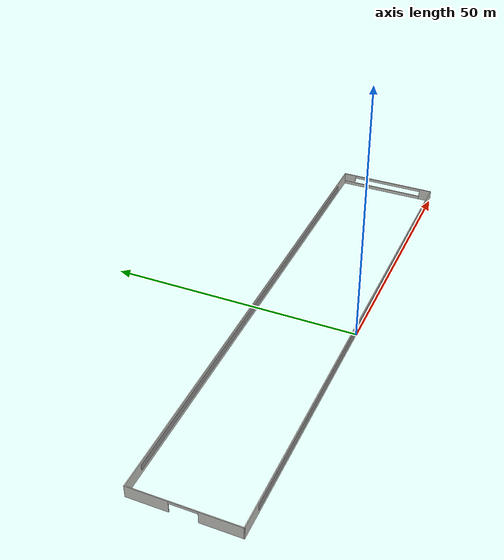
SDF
<?xml version='1.0'?>
<sdf version='1.5'>
  <model name='Industry_Area_Gazebo5'>
    <pose frame=''>0 10 0 0 -0 0</pose>
    <link name='Wall_0'>
      <collision name='Wall_0_Collision'>
        <geometry>
          <box>
            <size>100.15 0.15 2.5</size>
          </box>
        </geometry>
        <pose frame=''>0 0 1.25 0 -0 0</pose>
      </collision>
      <visual name='Wall_0_Visual'>
        <pose frame=''>0 0 1.25 0 -0 0</pose>
        <geometry>
          <box>
            <size>100.15 0.15 2.5</size>
          </box>
        </geometry>
        <material>
          <script>
            <uri>file://media/materials/scripts/gazebo.material</uri>
            <name>Gazebo/CeilingTiled</name>
          </script>
          <ambient>1 1 1 1</ambient>
        </material>
      </visual>
      <pose frame=''>0 -10 0 0 -0 0</pose>
    </link>
    <link name='Wall_2'>
      <pose frame=''>-50 0 0 0 -0 1.5708</pose>
      <visual name='Wall_2_Visual_0'>
        <pose frame=''>-6.2875 0 1.25 0 -0 0</pose>
        <geometry>
          <box>
            <size>7.575 0.15 2.5</size>
          </box>
        </geometry>
        <material>
          <script>
            <uri>file://media/materials/scripts/gazebo.material</uri>
            <name>Gazebo/CeilingTiled</name>
          </script>
          <ambient>1 1 1 1</ambient>
        </material>
      </visual>
      <collision name='Wall_2_Collision_0'>
        <geometry>
          <box>
            <size>7.575 0.15 2.5</size>
          </box>
        </geometry>
        <pose frame=''>-6.2875 0 1.25 0 -0 0</pose>
      </collision>
      <visual name='Wall_2_Visual_1'>
        <pose frame=''>6.2875 0 1.25 0 -0 0</pose>
        <geometry>
          <box>
            <size>7.575 0.15 2.5</size>
          </box>
        </geometry>
        <material>
          <script>
            <uri>file://media/materials/scripts/gazebo.material</uri>
            <name>Gazebo/CeilingTiled</name>
          </script>
          <ambient>1 1 1 1</ambient>
        </material>
      </visual>
      <collision name='Wall_2_Collision_1'>
        <geometry>
          <box>
            <size>7.575 0.15 2.5</size>
          </box>
        </geometry>
        <pose frame=''>6.2875 0 1.25 0 -0 0</pose>
      </collision>
      <visual name='Wall_2_Visual_2'>
        <pose frame=''>0 0 2.25 0 -0 0</pose>
        <geometry>
          <box>
            <size>5 0.15 0.5</size>
          </box>
        </geometry>
        <material>
          <script>
            <uri>file://media/materials/scripts/gazebo.material</uri>
            <name>Gazebo/CeilingTiled</name>
          </script>
          <ambient>1 1 1 1</ambient>
        </material>
      </visual>
      <collision name='Wall_2_Collision_2'>
        <geometry>
          <box>
            <size>5 0.15 0.5</size>
          </box>
        </geometry>
        <pose frame=''>0 0 2.25 0 -0 0</pose>
      </collision>
    </link>
    <link name='Wall_4'>
      <pose frame=''>50 0 0 0 -0 1.5708</pose>
      <visual name='Wall_4_Visual_0'>
        <pose frame=''>-8.7875 0 1.25 0 -0 0</pose>
        <geometry>
          <box>
            <size>2.575 0.15 2.5</size>
          </box>
        </geometry>
        <material>
          <script>
            <uri>file://media/materials/scripts/gazebo.material</uri>
            <name>Gazebo/CeilingTiled</name>
          </script>
          <ambient>1 1 1 1</ambient>
        </material>
      </visual>
      <collision name='Wall_4_Collision_0'>
        <geometry>
          <box>
            <size>2.575 0.15 2.5</size>
          </box>
        </geometry>
        <pose frame=''>-8.7875 0 1.25 0 -0 0</pose>
      </collision>
      <visual name='Wall_4_Visual_1'>
        <pose frame=''>1.2875 0 0.35 0 -0 0</pose>
        <geometry>
          <box>
            <size>17.575 0.15 0.7</size>
          </box>
        </geometry>
        <material>
          <script>
            <uri>file://media/materials/scripts/gazebo.material</uri>
            <name>Gazebo/CeilingTiled</name>
          </script>
          <ambient>1 1 1 1</ambient>
        </material>
      </visual>
      <collision name='Wall_4_Collision_1'>
        <geometry>
          <box>
            <size>17.575 0.15 0.7</size>
          </box>
        </geometry>
        <pose frame=''>1.2875 0 0.35 0 -0 0</pose>
      </collision>
      <visual name='Wall_4_Visual_2'>
        <pose frame=''>8.7875 0 1.6 0 -0 0</pose>
        <geometry>
          <box>
            <size>2.575 0.15 1.8</size>
          </box>
        </geometry>
        <material>
          <script>
            <uri>file://media/materials/scripts/gazebo.material</uri>
            <name>Gazebo/CeilingTiled</name>
          </script>
          <ambient>1 1 1 1</ambient>
        </material>
      </visual>
      <collision name='Wall_4_Collision_2'>
        <geometry>
          <box>
            <size>2.575 0.15 1.8</size>
          </box>
        </geometry>
        <pose frame=''>8.7875 0 1.6 0 -0 0</pose>
      </collision>
      <visual name='Wall_4_Visual_3'>
        <pose frame=''>0 0 2.2 0 -0 0</pose>
        <geometry>
          <box>
            <size>15 0.15 0.6</size>
          </box>
        </geometry>
        <material>
          <script>
            <uri>file://media/materials/scripts/gazebo.material</uri>
            <name>Gazebo/CeilingTiled</name>
          </script>
          <ambient>1 1 1 1</ambient>
        </material>
      </visual>
      <collision name='Wall_4_Collision_3'>
        <geometry>
          <box>
            <size>15 0.15 0.6</size>
          </box>
        </geometry>
        <pose frame=''>0 0 2.2 0 -0 0</pose>
      </collision>
    </link>
    <link name='Wall_6'>
      <collision name='Wall_6_Collision'>
        <geometry>
          <box>
            <size>100.15 0.15 2.5</size>
          </box>
        </geometry>
        <pose frame=''>0 0 1.25 0 -0 0</pose>
      </collision>
      <visual name='Wall_6_Visual'>
        <pose frame=''>0 0 1.25 0 -0 0</pose>
        <geometry>
          <box>
            <size>100.15 0.15 2.5</size>
          </box>
        </geometry>
        <material>
          <script>
            <uri>file://media/materials/scripts/gazebo.material</uri>
            <name>Gazebo/CeilingTiled</name>
          </script>
          <ambient>1 1 1 1</ambient>
        </material>
      </visual>
      <pose frame=''>0 10 0 0 -0 0</pose>
    </link>
    <link name='Window_0'>
      <collision name='Window_0_Collision'>
        <geometry>
          <box>
            <size>90 0.17 1.2</size>
          </box>
        </geometry>
        <pose frame=''>0 0 0.6 0 -0 0</pose>
      </collision>
      <visual name='Window_0_Visual'>
        <pose frame=''>0 0 0.6 0 -0 0</pose>
        <geometry>
          <box>
            <size>90 0.17 1.2</size>
          </box>
        </geometry>
        <material>
          <script>
            <uri>file://media/materials/scripts/gazebo.material</uri>
            <name>Gazebo/Grey</name>
          </script>
        </material>
      </visual>
      <pose frame=''>0 10 0.7 0 -0 0</pose>
    </link>
    <link name='Window_1'>
      <collision name='Window_1_Collision'>
        <geometry>
          <box>
            <size>90 0.17 1.2</size>
          </box>
        </geometry>
        <pose frame=''>0 0 0.6 0 -0 0</pose>
      </collision>
      <visual name='Window_1_Visual'>
        <pose frame=''>0 0 0.6 0 -0 0</pose>
        <geometry>
          <box>
            <size>90 0.17 1.2</size>
          </box>
        </geometry>
        <material>
          <script>
            <uri>file://media/materials/scripts/gazebo.material</uri>
            <name>Gazebo/Grey</name>
          </script>
        </material>
      </visual>
      <pose frame=''>0 -10 0.7 0 -0 0</pose>
    </link>
    <static>1</static>
  </model>
</sdf>
